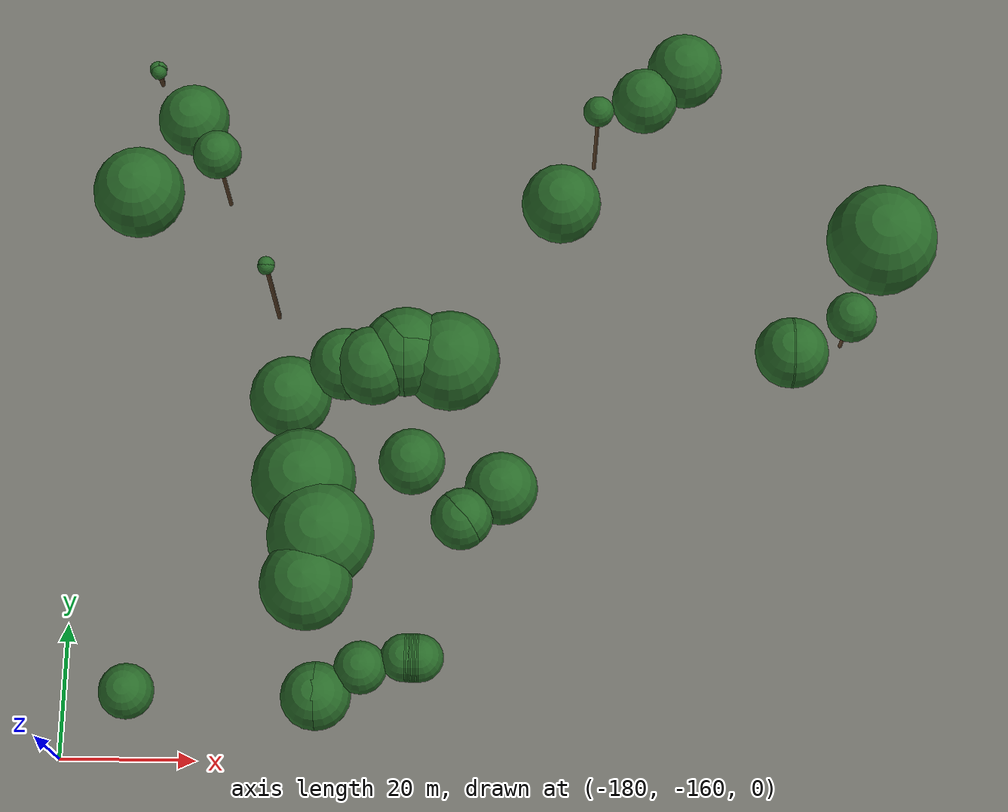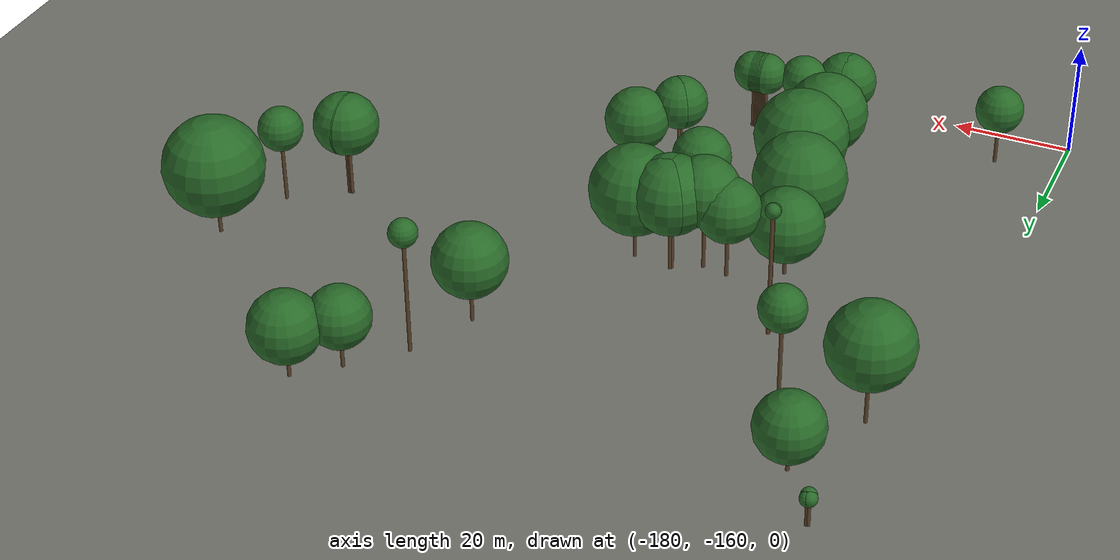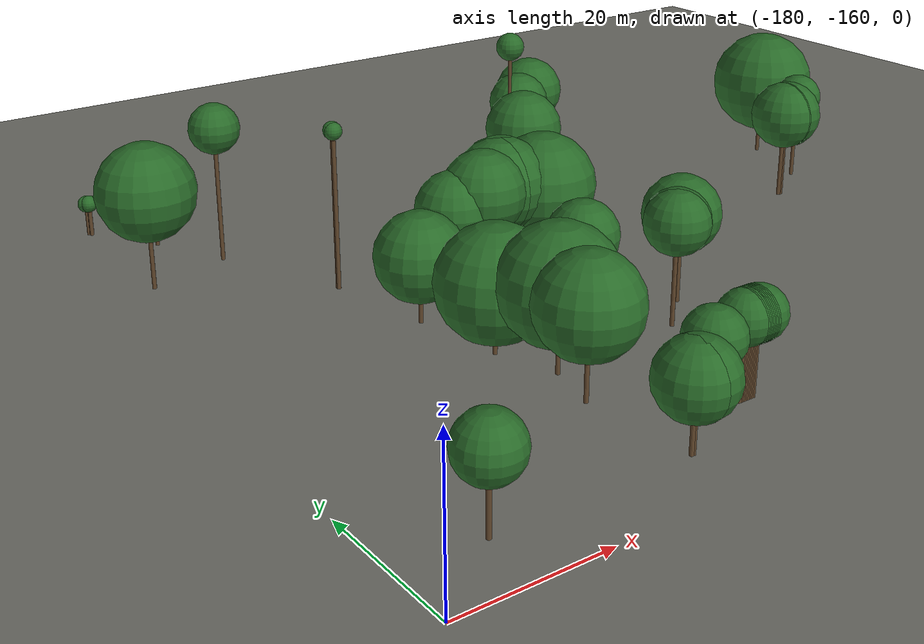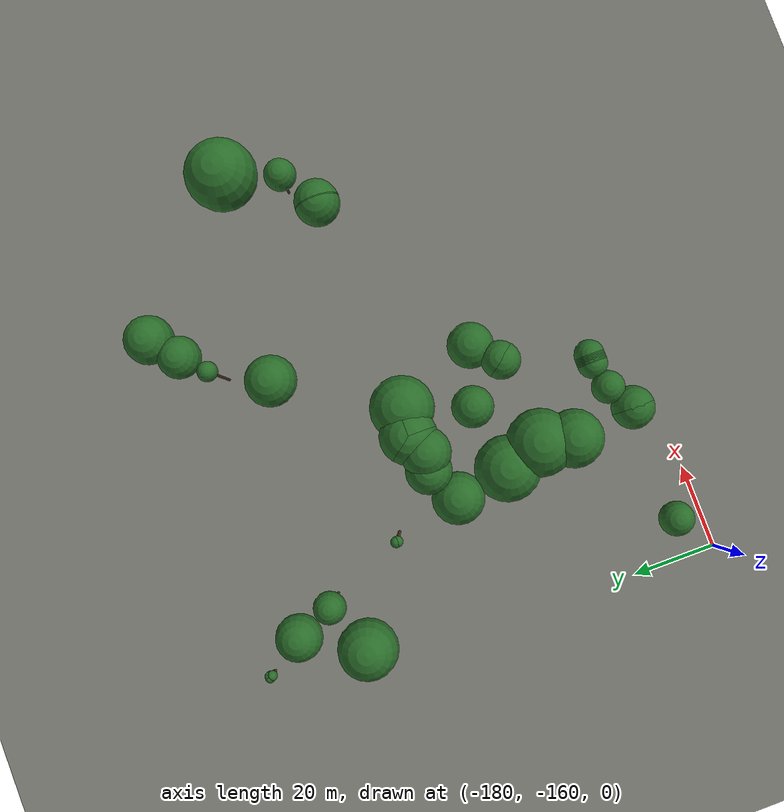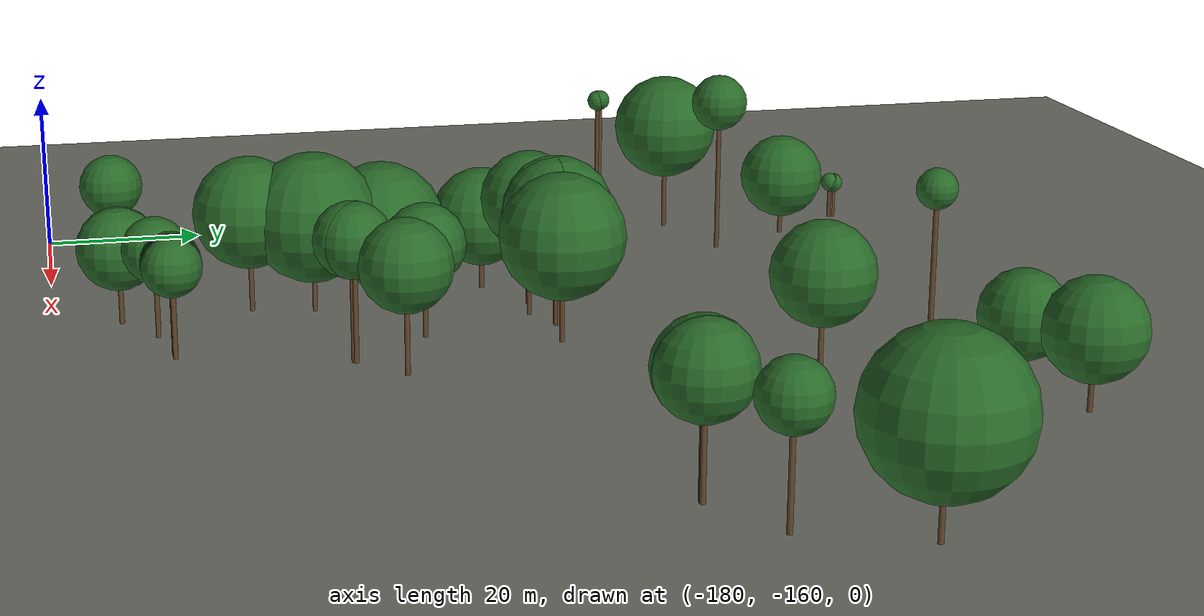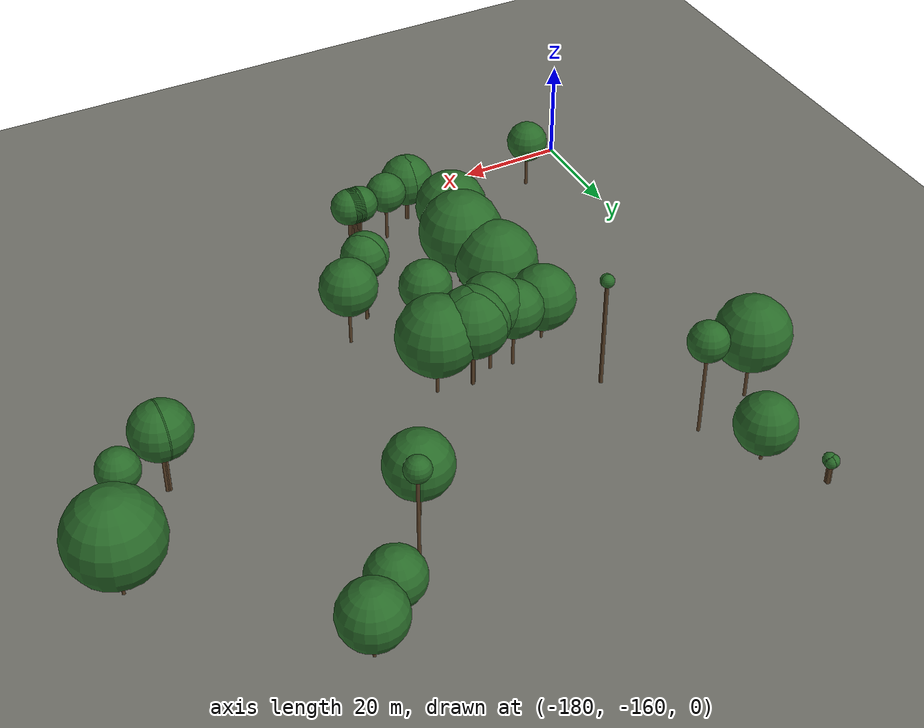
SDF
<sdf version="1.9">
 <world name="uav_arena_bk">
  <model name="ground_plane">
   <static>true</static>
   <link name="link">
    <collision name="collision">
     <geometry><plane><normal>0 0 1</normal><size>1200 1200</size></plane></geometry>
    </collision>
    <visual name="visual">
     <geometry><plane><normal>0 0 1</normal><size>1200 1200</size></plane></geometry>
     <material><ambient>0.35 0.35 0.33 1</ambient><diffuse>0.45 0.45 0.42 1</diffuse></material>
    </visual>
   </link>
  </model>
  <model name="tree_233">
   <static>true</static>
   <pose>-171.184 -51.440 0 0 0 0</pose>
   <link name="link">
    <collision name="trunk_collision">
     <pose>0 0 1.815 0 0 0</pose>
     <geometry><cylinder><radius>0.30</radius><length>3.630</length></cylinder></geometry>
    </collision>
    <visual name="trunk_visual">
     <pose>0 0 1.815 0 0 0</pose>
     <geometry><cylinder><radius>0.30</radius><length>3.630</length></cylinder></geometry>
     <material><ambient>0.25 0.18 0.11 1</ambient><diffuse>0.35 0.25 0.15 1</diffuse></material>
    </visual>
    <collision name="canopy_collision">
     <pose>0 0 4.880 0 0 0</pose>
     <geometry><sphere><radius>1.250</radius></sphere></geometry>
    </collision>
    <visual name="canopy_visual">
     <pose>0 0 4.880 0 0 0</pose>
     <geometry><sphere><radius>1.250</radius></sphere></geometry>
     <material><ambient>0.10 0.28 0.10 1</ambient><diffuse>0.16 0.42 0.16 1</diffuse></material>
     <plugin filename="gz-sim-label-system" name="gz::sim::systems::Label"><label>2</label></plugin>
    </visual>
   </link>
  </model>
  <model name="tree_234">
   <static>true</static>
   <pose>-170.934 -51.441 0 0 0 0</pose>
   <link name="link">
    <collision name="trunk_collision">
     <pose>0 0 1.795 0 0 0</pose>
     <geometry><cylinder><radius>0.30</radius><length>3.590</length></cylinder></geometry>
    </collision>
    <visual name="trunk_visual">
     <pose>0 0 1.795 0 0 0</pose>
     <geometry><cylinder><radius>0.30</radius><length>3.590</length></cylinder></geometry>
     <material><ambient>0.25 0.18 0.11 1</ambient><diffuse>0.35 0.25 0.15 1</diffuse></material>
    </visual>
    <collision name="canopy_collision">
     <pose>0 0 4.840 0 0 0</pose>
     <geometry><sphere><radius>1.250</radius></sphere></geometry>
    </collision>
    <visual name="canopy_visual">
     <pose>0 0 4.840 0 0 0</pose>
     <geometry><sphere><radius>1.250</radius></sphere></geometry>
     <material><ambient>0.10 0.28 0.10 1</ambient><diffuse>0.16 0.42 0.16 1</diffuse></material>
     <plugin filename="gz-sim-label-system" name="gz::sim::systems::Label"><label>2</label></plugin>
    </visual>
   </link>
  </model>
  <model name="tree_235">
   <static>true</static>
   <pose>-170.936 -51.691 0 0 0 0</pose>
   <link name="link">
    <collision name="trunk_collision">
     <pose>0 0 1.825 0 0 0</pose>
     <geometry><cylinder><radius>0.30</radius><length>3.650</length></cylinder></geometry>
    </collision>
    <visual name="trunk_visual">
     <pose>0 0 1.825 0 0 0</pose>
     <geometry><cylinder><radius>0.30</radius><length>3.650</length></cylinder></geometry>
     <material><ambient>0.25 0.18 0.11 1</ambient><diffuse>0.35 0.25 0.15 1</diffuse></material>
    </visual>
    <collision name="canopy_collision">
     <pose>0 0 4.900 0 0 0</pose>
     <geometry><sphere><radius>1.250</radius></sphere></geometry>
    </collision>
    <visual name="canopy_visual">
     <pose>0 0 4.900 0 0 0</pose>
     <geometry><sphere><radius>1.250</radius></sphere></geometry>
     <material><ambient>0.10 0.28 0.10 1</ambient><diffuse>0.16 0.42 0.16 1</diffuse></material>
     <plugin filename="gz-sim-label-system" name="gz::sim::systems::Label"><label>2</label></plugin>
    </visual>
   </link>
  </model>
  <model name="tree_236">
   <static>true</static>
   <pose>-170.937 -51.941 0 0 0 0</pose>
   <link name="link">
    <collision name="trunk_collision">
     <pose>0 0 1.875 0 0 0</pose>
     <geometry><cylinder><radius>0.30</radius><length>3.750</length></cylinder></geometry>
    </collision>
    <visual name="trunk_visual">
     <pose>0 0 1.875 0 0 0</pose>
     <geometry><cylinder><radius>0.30</radius><length>3.750</length></cylinder></geometry>
     <material><ambient>0.25 0.18 0.11 1</ambient><diffuse>0.35 0.25 0.15 1</diffuse></material>
    </visual>
    <collision name="canopy_collision">
     <pose>0 0 5.000 0 0 0</pose>
     <geometry><sphere><radius>1.250</radius></sphere></geometry>
    </collision>
    <visual name="canopy_visual">
     <pose>0 0 5.000 0 0 0</pose>
     <geometry><sphere><radius>1.250</radius></sphere></geometry>
     <material><ambient>0.10 0.28 0.10 1</ambient><diffuse>0.16 0.42 0.16 1</diffuse></material>
     <plugin filename="gz-sim-label-system" name="gz::sim::systems::Label"><label>2</label></plugin>
    </visual>
   </link>
  </model>
  <model name="tree_237">
   <static>true</static>
   <pose>-88.190 -52.639 0 0 0 0</pose>
   <link name="link">
    <collision name="trunk_collision">
     <pose>0 0 1.700 0 0 0</pose>
     <geometry><cylinder><radius>0.30</radius><length>3.400</length></cylinder></geometry>
    </collision>
    <visual name="trunk_visual">
     <pose>0 0 1.700 0 0 0</pose>
     <geometry><cylinder><radius>0.30</radius><length>3.400</length></cylinder></geometry>
     <material><ambient>0.25 0.18 0.11 1</ambient><diffuse>0.35 0.25 0.15 1</diffuse></material>
    </visual>
    <collision name="canopy_collision">
     <pose>0 0 9.210 0 0 0</pose>
     <geometry><sphere><radius>5.810</radius></sphere></geometry>
    </collision>
    <visual name="canopy_visual">
     <pose>0 0 9.210 0 0 0</pose>
     <geometry><sphere><radius>5.810</radius></sphere></geometry>
     <material><ambient>0.10 0.28 0.10 1</ambient><diffuse>0.16 0.42 0.16 1</diffuse></material>
     <plugin filename="gz-sim-label-system" name="gz::sim::systems::Label"><label>2</label></plugin>
    </visual>
   </link>
  </model>
  <model name="tree_240">
   <static>true</static>
   <pose>-94.469 -57.855 0 0 0 0</pose>
   <link name="link">
    <collision name="trunk_collision">
     <pose>0 0 2.120 0 0 0</pose>
     <geometry><cylinder><radius>0.30</radius><length>4.240</length></cylinder></geometry>
    </collision>
    <visual name="trunk_visual">
     <pose>0 0 2.120 0 0 0</pose>
     <geometry><cylinder><radius>0.30</radius><length>4.240</length></cylinder></geometry>
     <material><ambient>0.25 0.18 0.11 1</ambient><diffuse>0.35 0.25 0.15 1</diffuse></material>
    </visual>
    <collision name="canopy_collision">
     <pose>0 0 9.300 0 0 0</pose>
     <geometry><sphere><radius>5.060</radius></sphere></geometry>
    </collision>
    <visual name="canopy_visual">
     <pose>0 0 9.300 0 0 0</pose>
     <geometry><sphere><radius>5.060</radius></sphere></geometry>
     <material><ambient>0.10 0.28 0.10 1</ambient><diffuse>0.16 0.42 0.16 1</diffuse></material>
     <plugin filename="gz-sim-label-system" name="gz::sim::systems::Label"><label>2</label></plugin>
    </visual>
   </link>
  </model>
  <model name="tree_243">
   <static>true</static>
   <pose>-164.489 -61.476 0 0 0 0</pose>
   <link name="link">
    <collision name="trunk_collision">
     <pose>0 0 1.240 0 0 0</pose>
     <geometry><cylinder><radius>0.30</radius><length>2.480</length></cylinder></geometry>
    </collision>
    <visual name="trunk_visual">
     <pose>0 0 1.240 0 0 0</pose>
     <geometry><cylinder><radius>0.30</radius><length>2.480</length></cylinder></geometry>
     <material><ambient>0.25 0.18 0.11 1</ambient><diffuse>0.35 0.25 0.15 1</diffuse></material>
    </visual>
    <collision name="canopy_collision">
     <pose>0 0 7.990 0 0 0</pose>
     <geometry><sphere><radius>5.510</radius></sphere></geometry>
    </collision>
    <visual name="canopy_visual">
     <pose>0 0 7.990 0 0 0</pose>
     <geometry><sphere><radius>5.510</radius></sphere></geometry>
     <material><ambient>0.10 0.28 0.10 1</ambient><diffuse>0.16 0.42 0.16 1</diffuse></material>
     <plugin filename="gz-sim-label-system" name="gz::sim::systems::Label"><label>2</label></plugin>
    </visual>
   </link>
  </model>
  <model name="tree_250">
   <static>true</static>
   <pose>-102.009 -65.315 0 0 0 0</pose>
   <link name="link">
    <collision name="trunk_collision">
     <pose>0 0 9.730 0 0 0</pose>
     <geometry><cylinder><radius>0.30</radius><length>19.460</length></cylinder></geometry>
    </collision>
    <visual name="trunk_visual">
     <pose>0 0 9.730 0 0 0</pose>
     <geometry><cylinder><radius>0.30</radius><length>19.460</length></cylinder></geometry>
     <material><ambient>0.25 0.18 0.11 1</ambient><diffuse>0.35 0.25 0.15 1</diffuse></material>
    </visual>
    <collision name="canopy_collision">
     <pose>0 0 21.760 0 0 0</pose>
     <geometry><sphere><radius>2.300</radius></sphere></geometry>
    </collision>
    <visual name="canopy_visual">
     <pose>0 0 21.760 0 0 0</pose>
     <geometry><sphere><radius>2.300</radius></sphere></geometry>
     <material><ambient>0.10 0.28 0.10 1</ambient><diffuse>0.16 0.42 0.16 1</diffuse></material>
     <plugin filename="gz-sim-label-system" name="gz::sim::systems::Label"><label>2</label></plugin>
    </visual>
   </link>
  </model>
  <model name="tree_259">
   <static>true</static>
   <pose>-159.047 -72.256 0 0 0 0</pose>
   <link name="link">
    <collision name="trunk_collision">
     <pose>0 0 8.095 0 0 0</pose>
     <geometry><cylinder><radius>0.30</radius><length>16.190</length></cylinder></geometry>
    </collision>
    <visual name="trunk_visual">
     <pose>0 0 8.095 0 0 0</pose>
     <geometry><cylinder><radius>0.30</radius><length>16.190</length></cylinder></geometry>
     <material><ambient>0.25 0.18 0.11 1</ambient><diffuse>0.35 0.25 0.15 1</diffuse></material>
    </visual>
    <collision name="canopy_collision">
     <pose>0 0 19.830 0 0 0</pose>
     <geometry><sphere><radius>3.640</radius></sphere></geometry>
    </collision>
    <visual name="canopy_visual">
     <pose>0 0 19.830 0 0 0</pose>
     <geometry><sphere><radius>3.640</radius></sphere></geometry>
     <material><ambient>0.10 0.28 0.10 1</ambient><diffuse>0.16 0.42 0.16 1</diffuse></material>
     <plugin filename="gz-sim-label-system" name="gz::sim::systems::Label"><label>2</label></plugin>
    </visual>
   </link>
  </model>
  <model name="tree_265">
   <static>true</static>
   <pose>-107.317 -76.036 0 0 0 0</pose>
   <link name="link">
    <collision name="trunk_collision">
     <pose>0 0 2.660 0 0 0</pose>
     <geometry><cylinder><radius>0.30</radius><length>5.320</length></cylinder></geometry>
    </collision>
    <visual name="trunk_visual">
     <pose>0 0 2.660 0 0 0</pose>
     <geometry><cylinder><radius>0.30</radius><length>5.320</length></cylinder></geometry>
     <material><ambient>0.25 0.18 0.11 1</ambient><diffuse>0.35 0.25 0.15 1</diffuse></material>
    </visual>
    <collision name="canopy_collision">
     <pose>0 0 11.370 0 0 0</pose>
     <geometry><sphere><radius>6.050</radius></sphere></geometry>
    </collision>
    <visual name="canopy_visual">
     <pose>0 0 11.370 0 0 0</pose>
     <geometry><sphere><radius>6.050</radius></sphere></geometry>
     <material><ambient>0.10 0.28 0.10 1</ambient><diffuse>0.16 0.42 0.16 1</diffuse></material>
     <plugin filename="gz-sim-label-system" name="gz::sim::systems::Label"><label>2</label></plugin>
    </visual>
   </link>
  </model>
  <model name="tree_266">
   <static>true</static>
   <pose>-171.318 -76.190 0 0 0 0</pose>
   <link name="link">
    <collision name="trunk_collision">
     <pose>0 0 3.625 0 0 0</pose>
     <geometry><cylinder><radius>0.30</radius><length>7.250</length></cylinder></geometry>
    </collision>
    <visual name="trunk_visual">
     <pose>0 0 3.625 0 0 0</pose>
     <geometry><cylinder><radius>0.30</radius><length>7.250</length></cylinder></geometry>
     <material><ambient>0.25 0.18 0.11 1</ambient><diffuse>0.35 0.25 0.15 1</diffuse></material>
    </visual>
    <collision name="canopy_collision">
     <pose>0 0 14.150 0 0 0</pose>
     <geometry><sphere><radius>6.900</radius></sphere></geometry>
    </collision>
    <visual name="canopy_visual">
     <pose>0 0 14.150 0 0 0</pose>
     <geometry><sphere><radius>6.900</radius></sphere></geometry>
     <material><ambient>0.10 0.28 0.10 1</ambient><diffuse>0.16 0.42 0.16 1</diffuse></material>
     <plugin filename="gz-sim-label-system" name="gz::sim::systems::Label"><label>2</label></plugin>
    </visual>
   </link>
  </model>
  <model name="tree_269">
   <static>true</static>
   <pose>-58.848 -81.799 0 0 0 0</pose>
   <link name="link">
    <collision name="trunk_collision">
     <pose>0 0 2.140 0 0 0</pose>
     <geometry><cylinder><radius>0.30</radius><length>4.280</length></cylinder></geometry>
    </collision>
    <visual name="trunk_visual">
     <pose>0 0 2.140 0 0 0</pose>
     <geometry><cylinder><radius>0.30</radius><length>4.280</length></cylinder></geometry>
     <material><ambient>0.25 0.18 0.11 1</ambient><diffuse>0.35 0.25 0.15 1</diffuse></material>
    </visual>
    <collision name="canopy_collision">
     <pose>0 0 12.670 0 0 0</pose>
     <geometry><sphere><radius>8.390</radius></sphere></geometry>
    </collision>
    <visual name="canopy_visual">
     <pose>0 0 12.670 0 0 0</pose>
     <geometry><sphere><radius>8.390</radius></sphere></geometry>
     <material><ambient>0.10 0.28 0.10 1</ambient><diffuse>0.16 0.42 0.16 1</diffuse></material>
     <plugin filename="gz-sim-label-system" name="gz::sim::systems::Label"><label>2</label></plugin>
    </visual>
   </link>
  </model>
  <model name="tree_274">
   <static>true</static>
   <pose>-150.647 -90.802 0 0 0 0</pose>
   <link name="link">
    <collision name="trunk_collision">
     <pose>0 0 10.740 0 0 0</pose>
     <geometry><cylinder><radius>0.30</radius><length>21.480</length></cylinder></geometry>
    </collision>
    <visual name="trunk_visual">
     <pose>0 0 10.740 0 0 0</pose>
     <geometry><cylinder><radius>0.30</radius><length>21.480</length></cylinder></geometry>
     <material><ambient>0.25 0.18 0.11 1</ambient><diffuse>0.35 0.25 0.15 1</diffuse></material>
    </visual>
    <collision name="canopy_collision">
     <pose>0 0 22.730 0 0 0</pose>
     <geometry><sphere><radius>1.250</radius></sphere></geometry>
    </collision>
    <visual name="canopy_visual">
     <pose>0 0 22.730 0 0 0</pose>
     <geometry><sphere><radius>1.250</radius></sphere></geometry>
     <material><ambient>0.10 0.28 0.10 1</ambient><diffuse>0.16 0.42 0.16 1</diffuse></material>
     <plugin filename="gz-sim-label-system" name="gz::sim::systems::Label"><label>2</label></plugin>
    </visual>
   </link>
  </model>
  <model name="tree_275">
   <static>true</static>
   <pose>-150.649 -91.052 0 0 0 0</pose>
   <link name="link">
    <collision name="trunk_collision">
     <pose>0 0 10.715 0 0 0</pose>
     <geometry><cylinder><radius>0.30</radius><length>21.430</length></cylinder></geometry>
    </collision>
    <visual name="trunk_visual">
     <pose>0 0 10.715 0 0 0</pose>
     <geometry><cylinder><radius>0.30</radius><length>21.430</length></cylinder></geometry>
     <material><ambient>0.25 0.18 0.11 1</ambient><diffuse>0.35 0.25 0.15 1</diffuse></material>
    </visual>
    <collision name="canopy_collision">
     <pose>0 0 22.680 0 0 0</pose>
     <geometry><sphere><radius>1.250</radius></sphere></geometry>
    </collision>
    <visual name="canopy_visual">
     <pose>0 0 22.680 0 0 0</pose>
     <geometry><sphere><radius>1.250</radius></sphere></geometry>
     <material><ambient>0.10 0.28 0.10 1</ambient><diffuse>0.16 0.42 0.16 1</diffuse></material>
     <plugin filename="gz-sim-label-system" name="gz::sim::systems::Label"><label>2</label></plugin>
    </visual>
   </link>
  </model>
  <model name="tree_276">
   <static>true</static>
   <pose>-63.917 -94.521 0 0 0 0</pose>
   <link name="link">
    <collision name="trunk_collision">
     <pose>0 0 4.905 0 0 0</pose>
     <geometry><cylinder><radius>0.30</radius><length>9.810</length></cylinder></geometry>
    </collision>
    <visual name="trunk_visual">
     <pose>0 0 4.905 0 0 0</pose>
     <geometry><cylinder><radius>0.30</radius><length>9.810</length></cylinder></geometry>
     <material><ambient>0.25 0.18 0.11 1</ambient><diffuse>0.35 0.25 0.15 1</diffuse></material>
    </visual>
    <collision name="canopy_collision">
     <pose>0 0 13.560 0 0 0</pose>
     <geometry><sphere><radius>3.750</radius></sphere></geometry>
    </collision>
    <visual name="canopy_visual">
     <pose>0 0 13.560 0 0 0</pose>
     <geometry><sphere><radius>3.750</radius></sphere></geometry>
     <material><ambient>0.10 0.28 0.10 1</ambient><diffuse>0.16 0.42 0.16 1</diffuse></material>
     <plugin filename="gz-sim-label-system" name="gz::sim::systems::Label"><label>2</label></plugin>
    </visual>
   </link>
  </model>
  <model name="tree_280">
   <static>true</static>
   <pose>-73.198 -100.221 0 0 0 0</pose>
   <link name="link">
    <collision name="trunk_collision">
     <pose>0 0 4.130 0 0 0</pose>
     <geometry><cylinder><radius>0.30</radius><length>8.260</length></cylinder></geometry>
    </collision>
    <visual name="trunk_visual">
     <pose>0 0 4.130 0 0 0</pose>
     <geometry><cylinder><radius>0.30</radius><length>8.260</length></cylinder></geometry>
     <material><ambient>0.25 0.18 0.11 1</ambient><diffuse>0.35 0.25 0.15 1</diffuse></material>
    </visual>
    <collision name="canopy_collision">
     <pose>0 0 13.510 0 0 0</pose>
     <geometry><sphere><radius>5.250</radius></sphere></geometry>
    </collision>
    <visual name="canopy_visual">
     <pose>0 0 13.510 0 0 0</pose>
     <geometry><sphere><radius>5.250</radius></sphere></geometry>
     <material><ambient>0.10 0.28 0.10 1</ambient><diffuse>0.16 0.42 0.16 1</diffuse></material>
     <plugin filename="gz-sim-label-system" name="gz::sim::systems::Label"><label>2</label></plugin>
    </visual>
   </link>
  </model>
  <model name="tree_281">
   <static>true</static>
   <pose>-72.948 -100.222 0 0 0 0</pose>
   <link name="link">
    <collision name="trunk_collision">
     <pose>0 0 4.130 0 0 0</pose>
     <geometry><cylinder><radius>0.30</radius><length>8.260</length></cylinder></geometry>
    </collision>
    <visual name="trunk_visual">
     <pose>0 0 4.130 0 0 0</pose>
     <geometry><cylinder><radius>0.30</radius><length>8.260</length></cylinder></geometry>
     <material><ambient>0.25 0.18 0.11 1</ambient><diffuse>0.35 0.25 0.15 1</diffuse></material>
    </visual>
    <collision name="canopy_collision">
     <pose>0 0 13.510 0 0 0</pose>
     <geometry><sphere><radius>5.250</radius></sphere></geometry>
    </collision>
    <visual name="canopy_visual">
     <pose>0 0 13.510 0 0 0</pose>
     <geometry><sphere><radius>5.250</radius></sphere></geometry>
     <material><ambient>0.10 0.28 0.10 1</ambient><diffuse>0.16 0.42 0.16 1</diffuse></material>
     <plugin filename="gz-sim-label-system" name="gz::sim::systems::Label"><label>2</label></plugin>
    </visual>
   </link>
  </model>
  <model name="tree_282">
   <static>true</static>
   <pose>-72.698 -100.224 0 0 0 0</pose>
   <link name="link">
    <collision name="trunk_collision">
     <pose>0 0 4.130 0 0 0</pose>
     <geometry><cylinder><radius>0.30</radius><length>8.260</length></cylinder></geometry>
    </collision>
    <visual name="trunk_visual">
     <pose>0 0 4.130 0 0 0</pose>
     <geometry><cylinder><radius>0.30</radius><length>8.260</length></cylinder></geometry>
     <material><ambient>0.25 0.18 0.11 1</ambient><diffuse>0.35 0.25 0.15 1</diffuse></material>
    </visual>
    <collision name="canopy_collision">
     <pose>0 0 13.510 0 0 0</pose>
     <geometry><sphere><radius>5.250</radius></sphere></geometry>
    </collision>
    <visual name="canopy_visual">
     <pose>0 0 13.510 0 0 0</pose>
     <geometry><sphere><radius>5.250</radius></sphere></geometry>
     <material><ambient>0.10 0.28 0.10 1</ambient><diffuse>0.16 0.42 0.16 1</diffuse></material>
     <plugin filename="gz-sim-label-system" name="gz::sim::systems::Label"><label>2</label></plugin>
    </visual>
   </link>
  </model>
  <model name="tree_287">
   <static>true</static>
   <pose>-130.202 -100.912 0 0 0 0</pose>
   <link name="link">
    <collision name="trunk_collision">
     <pose>0 0 3.770 0 0 0</pose>
     <geometry><cylinder><radius>0.30</radius><length>7.540</length></cylinder></geometry>
    </collision>
    <visual name="trunk_visual">
     <pose>0 0 3.770 0 0 0</pose>
     <geometry><cylinder><radius>0.30</radius><length>7.540</length></cylinder></geometry>
     <material><ambient>0.25 0.18 0.11 1</ambient><diffuse>0.35 0.25 0.15 1</diffuse></material>
    </visual>
    <collision name="canopy_collision">
     <pose>0 0 14.080 0 0 0</pose>
     <geometry><sphere><radius>6.540</radius></sphere></geometry>
    </collision>
    <visual name="canopy_visual">
     <pose>0 0 14.080 0 0 0</pose>
     <geometry><sphere><radius>6.540</radius></sphere></geometry>
     <material><ambient>0.10 0.28 0.10 1</ambient><diffuse>0.16 0.42 0.16 1</diffuse></material>
     <plugin filename="gz-sim-label-system" name="gz::sim::systems::Label"><label>2</label></plugin>
    </visual>
   </link>
  </model>
  <model name="tree_288">
   <static>true</static>
   <pose>-130.453 -101.161 0 0 0 0</pose>
   <link name="link">
    <collision name="trunk_collision">
     <pose>0 0 3.770 0 0 0</pose>
     <geometry><cylinder><radius>0.30</radius><length>7.540</length></cylinder></geometry>
    </collision>
    <visual name="trunk_visual">
     <pose>0 0 3.770 0 0 0</pose>
     <geometry><cylinder><radius>0.30</radius><length>7.540</length></cylinder></geometry>
     <material><ambient>0.25 0.18 0.11 1</ambient><diffuse>0.35 0.25 0.15 1</diffuse></material>
    </visual>
    <collision name="canopy_collision">
     <pose>0 0 14.080 0 0 0</pose>
     <geometry><sphere><radius>6.540</radius></sphere></geometry>
    </collision>
    <visual name="canopy_visual">
     <pose>0 0 14.080 0 0 0</pose>
     <geometry><sphere><radius>6.540</radius></sphere></geometry>
     <material><ambient>0.10 0.28 0.10 1</ambient><diffuse>0.16 0.42 0.16 1</diffuse></material>
     <plugin filename="gz-sim-label-system" name="gz::sim::systems::Label"><label>2</label></plugin>
    </visual>
   </link>
  </model>
  <model name="tree_289">
   <static>true</static>
   <pose>-130.203 -101.162 0 0 0 0</pose>
   <link name="link">
    <collision name="trunk_collision">
     <pose>0 0 3.770 0 0 0</pose>
     <geometry><cylinder><radius>0.30</radius><length>7.540</length></cylinder></geometry>
    </collision>
    <visual name="trunk_visual">
     <pose>0 0 3.770 0 0 0</pose>
     <geometry><cylinder><radius>0.30</radius><length>7.540</length></cylinder></geometry>
     <material><ambient>0.25 0.18 0.11 1</ambient><diffuse>0.35 0.25 0.15 1</diffuse></material>
    </visual>
    <collision name="canopy_collision">
     <pose>0 0 14.080 0 0 0</pose>
     <geometry><sphere><radius>6.540</radius></sphere></geometry>
    </collision>
    <visual name="canopy_visual">
     <pose>0 0 14.080 0 0 0</pose>
     <geometry><sphere><radius>6.540</radius></sphere></geometry>
     <material><ambient>0.10 0.28 0.10 1</ambient><diffuse>0.16 0.42 0.16 1</diffuse></material>
     <plugin filename="gz-sim-label-system" name="gz::sim::systems::Label"><label>2</label></plugin>
    </visual>
   </link>
  </model>
  <model name="tree_291">
   <static>true</static>
   <pose>-123.707 -101.947 0 0 0 0</pose>
   <link name="link">
    <collision name="trunk_collision">
     <pose>0 0 2.655 0 0 0</pose>
     <geometry><cylinder><radius>0.30</radius><length>5.310</length></cylinder></geometry>
    </collision>
    <visual name="trunk_visual">
     <pose>0 0 2.655 0 0 0</pose>
     <geometry><cylinder><radius>0.30</radius><length>5.310</length></cylinder></geometry>
     <material><ambient>0.25 0.18 0.11 1</ambient><diffuse>0.35 0.25 0.15 1</diffuse></material>
    </visual>
    <collision name="canopy_collision">
     <pose>0 0 12.770 0 0 0</pose>
     <geometry><sphere><radius>7.460</radius></sphere></geometry>
    </collision>
    <visual name="canopy_visual">
     <pose>0 0 12.770 0 0 0</pose>
     <geometry><sphere><radius>7.460</radius></sphere></geometry>
     <material><ambient>0.10 0.28 0.10 1</ambient><diffuse>0.16 0.42 0.16 1</diffuse></material>
     <plugin filename="gz-sim-label-system" name="gz::sim::systems::Label"><label>2</label></plugin>
    </visual>
   </link>
  </model>
  <model name="tree_292">
   <static>true</static>
   <pose>-139.211 -102.614 0 0 0 0</pose>
   <link name="link">
    <collision name="trunk_collision">
     <pose>0 0 3.600 0 0 0</pose>
     <geometry><cylinder><radius>0.30</radius><length>7.200</length></cylinder></geometry>
    </collision>
    <visual name="trunk_visual">
     <pose>0 0 3.600 0 0 0</pose>
     <geometry><cylinder><radius>0.30</radius><length>7.200</length></cylinder></geometry>
     <material><ambient>0.25 0.18 0.11 1</ambient><diffuse>0.35 0.25 0.15 1</diffuse></material>
    </visual>
    <collision name="canopy_collision">
     <pose>0 0 12.590 0 0 0</pose>
     <geometry><sphere><radius>5.390</radius></sphere></geometry>
    </collision>
    <visual name="canopy_visual">
     <pose>0 0 12.590 0 0 0</pose>
     <geometry><sphere><radius>5.390</radius></sphere></geometry>
     <material><ambient>0.10 0.28 0.10 1</ambient><diffuse>0.16 0.42 0.16 1</diffuse></material>
     <plugin filename="gz-sim-label-system" name="gz::sim::systems::Label"><label>2</label></plugin>
    </visual>
   </link>
  </model>
  <model name="tree_294">
   <static>true</static>
   <pose>-134.965 -103.387 0 0 0 0</pose>
   <link name="link">
    <collision name="trunk_collision">
     <pose>0 0 4.295 0 0 0</pose>
     <geometry><cylinder><radius>0.30</radius><length>8.590</length></cylinder></geometry>
    </collision>
    <visual name="trunk_visual">
     <pose>0 0 4.295 0 0 0</pose>
     <geometry><cylinder><radius>0.30</radius><length>8.590</length></cylinder></geometry>
     <material><ambient>0.25 0.18 0.11 1</ambient><diffuse>0.35 0.25 0.15 1</diffuse></material>
    </visual>
    <collision name="canopy_collision">
     <pose>0 0 14.450 0 0 0</pose>
     <geometry><sphere><radius>5.860</radius></sphere></geometry>
    </collision>
    <visual name="canopy_visual">
     <pose>0 0 14.450 0 0 0</pose>
     <geometry><sphere><radius>5.860</radius></sphere></geometry>
     <material><ambient>0.10 0.28 0.10 1</ambient><diffuse>0.16 0.42 0.16 1</diffuse></material>
     <plugin filename="gz-sim-label-system" name="gz::sim::systems::Label"><label>2</label></plugin>
    </visual>
   </link>
  </model>
  <model name="tree_299">
   <static>true</static>
   <pose>-147.484 -106.819 0 0 0 0</pose>
   <link name="link">
    <collision name="trunk_collision">
     <pose>0 0 1.570 0 0 0</pose>
     <geometry><cylinder><radius>0.30</radius><length>3.140</length></cylinder></geometry>
    </collision>
    <visual name="trunk_visual">
     <pose>0 0 1.570 0 0 0</pose>
     <geometry><cylinder><radius>0.30</radius><length>3.140</length></cylinder></geometry>
     <material><ambient>0.25 0.18 0.11 1</ambient><diffuse>0.35 0.25 0.15 1</diffuse></material>
    </visual>
    <collision name="canopy_collision">
     <pose>0 0 9.290 0 0 0</pose>
     <geometry><sphere><radius>6.150</radius></sphere></geometry>
    </collision>
    <visual name="canopy_visual">
     <pose>0 0 9.290 0 0 0</pose>
     <geometry><sphere><radius>6.150</radius></sphere></geometry>
     <material><ambient>0.10 0.28 0.10 1</ambient><diffuse>0.16 0.42 0.16 1</diffuse></material>
     <plugin filename="gz-sim-label-system" name="gz::sim::systems::Label"><label>2</label></plugin>
    </visual>
   </link>
  </model>
  <model name="tree_305">
   <static>true</static>
   <pose>-129.040 -117.169 0 0 0 0</pose>
   <link name="link">
    <collision name="trunk_collision">
     <pose>0 0 3.185 0 0 0</pose>
     <geometry><cylinder><radius>0.30</radius><length>6.370</length></cylinder></geometry>
    </collision>
    <visual name="trunk_visual">
     <pose>0 0 3.185 0 0 0</pose>
     <geometry><cylinder><radius>0.30</radius><length>6.370</length></cylinder></geometry>
     <material><ambient>0.25 0.18 0.11 1</ambient><diffuse>0.35 0.25 0.15 1</diffuse></material>
    </visual>
    <collision name="canopy_collision">
     <pose>0 0 11.280 0 0 0</pose>
     <geometry><sphere><radius>4.910</radius></sphere></geometry>
    </collision>
    <visual name="canopy_visual">
     <pose>0 0 11.280 0 0 0</pose>
     <geometry><sphere><radius>4.910</radius></sphere></geometry>
     <material><ambient>0.10 0.28 0.10 1</ambient><diffuse>0.16 0.42 0.16 1</diffuse></material>
     <plugin filename="gz-sim-label-system" name="gz::sim::systems::Label"><label>2</label></plugin>
    </visual>
   </link>
  </model>
  <model name="tree_306">
   <static>true</static>
   <pose>-145.054 -119.832 0 0 0 0</pose>
   <link name="link">
    <collision name="trunk_collision">
     <pose>0 0 0.915 0 0 0</pose>
     <geometry><cylinder><radius>0.30</radius><length>1.830</length></cylinder></geometry>
    </collision>
    <visual name="trunk_visual">
     <pose>0 0 0.915 0 0 0</pose>
     <geometry><cylinder><radius>0.30</radius><length>1.830</length></cylinder></geometry>
     <material><ambient>0.25 0.18 0.11 1</ambient><diffuse>0.35 0.25 0.15 1</diffuse></material>
    </visual>
    <collision name="canopy_collision">
     <pose>0 0 9.620 0 0 0</pose>
     <geometry><sphere><radius>7.790</radius></sphere></geometry>
    </collision>
    <visual name="canopy_visual">
     <pose>0 0 9.620 0 0 0</pose>
     <geometry><sphere><radius>7.790</radius></sphere></geometry>
     <material><ambient>0.10 0.28 0.10 1</ambient><diffuse>0.16 0.42 0.16 1</diffuse></material>
     <plugin filename="gz-sim-label-system" name="gz::sim::systems::Label"><label>2</label></plugin>
    </visual>
   </link>
  </model>
  <model name="tree_308">
   <static>true</static>
   <pose>-115.813 -121.490 0 0 0 0</pose>
   <link name="link">
    <collision name="trunk_collision">
     <pose>0 0 3.680 0 0 0</pose>
     <geometry><cylinder><radius>0.30</radius><length>7.360</length></cylinder></geometry>
    </collision>
    <visual name="trunk_visual">
     <pose>0 0 3.680 0 0 0</pose>
     <geometry><cylinder><radius>0.30</radius><length>7.360</length></cylinder></geometry>
     <material><ambient>0.25 0.18 0.11 1</ambient><diffuse>0.35 0.25 0.15 1</diffuse></material>
    </visual>
    <collision name="canopy_collision">
     <pose>0 0 12.730 0 0 0</pose>
     <geometry><sphere><radius>5.370</radius></sphere></geometry>
    </collision>
    <visual name="canopy_visual">
     <pose>0 0 12.730 0 0 0</pose>
     <geometry><sphere><radius>5.370</radius></sphere></geometry>
     <material><ambient>0.10 0.28 0.10 1</ambient><diffuse>0.16 0.42 0.16 1</diffuse></material>
     <plugin filename="gz-sim-label-system" name="gz::sim::systems::Label"><label>2</label></plugin>
    </visual>
   </link>
  </model>
  <model name="tree_323">
   <static>true</static>
   <pose>-121.340 -126.460 0 0 0 0</pose>
   <link name="link">
    <collision name="trunk_collision">
     <pose>0 0 5.005 0 0 0</pose>
     <geometry><cylinder><radius>0.30</radius><length>10.010</length></cylinder></geometry>
    </collision>
    <visual name="trunk_visual">
     <pose>0 0 5.005 0 0 0</pose>
     <geometry><cylinder><radius>0.30</radius><length>10.010</length></cylinder></geometry>
     <material><ambient>0.25 0.18 0.11 1</ambient><diffuse>0.35 0.25 0.15 1</diffuse></material>
    </visual>
    <collision name="canopy_collision">
     <pose>0 0 14.430 0 0 0</pose>
     <geometry><sphere><radius>4.420</radius></sphere></geometry>
    </collision>
    <visual name="canopy_visual">
     <pose>0 0 14.430 0 0 0</pose>
     <geometry><sphere><radius>4.420</radius></sphere></geometry>
     <material><ambient>0.10 0.28 0.10 1</ambient><diffuse>0.16 0.42 0.16 1</diffuse></material>
     <plugin filename="gz-sim-label-system" name="gz::sim::systems::Label"><label>2</label></plugin>
    </visual>
   </link>
  </model>
  <model name="tree_324">
   <static>true</static>
   <pose>-121.591 -126.709 0 0 0 0</pose>
   <link name="link">
    <collision name="trunk_collision">
     <pose>0 0 5.005 0 0 0</pose>
     <geometry><cylinder><radius>0.30</radius><length>10.010</length></cylinder></geometry>
    </collision>
    <visual name="trunk_visual">
     <pose>0 0 5.005 0 0 0</pose>
     <geometry><cylinder><radius>0.30</radius><length>10.010</length></cylinder></geometry>
     <material><ambient>0.25 0.18 0.11 1</ambient><diffuse>0.35 0.25 0.15 1</diffuse></material>
    </visual>
    <collision name="canopy_collision">
     <pose>0 0 14.430 0 0 0</pose>
     <geometry><sphere><radius>4.420</radius></sphere></geometry>
    </collision>
    <visual name="canopy_visual">
     <pose>0 0 14.430 0 0 0</pose>
     <geometry><sphere><radius>4.420</radius></sphere></geometry>
     <material><ambient>0.10 0.28 0.10 1</ambient><diffuse>0.16 0.42 0.16 1</diffuse></material>
     <plugin filename="gz-sim-label-system" name="gz::sim::systems::Label"><label>2</label></plugin>
    </visual>
   </link>
  </model>
  <model name="tree_325">
   <static>true</static>
   <pose>-142.102 -128.598 0 0 0 0</pose>
   <link name="link">
    <collision name="trunk_collision">
     <pose>0 0 1.960 0 0 0</pose>
     <geometry><cylinder><radius>0.30</radius><length>3.920</length></cylinder></geometry>
    </collision>
    <visual name="trunk_visual">
     <pose>0 0 1.960 0 0 0</pose>
     <geometry><cylinder><radius>0.30</radius><length>3.920</length></cylinder></geometry>
     <material><ambient>0.25 0.18 0.11 1</ambient><diffuse>0.35 0.25 0.15 1</diffuse></material>
    </visual>
    <collision name="canopy_collision">
     <pose>0 0 11.830 0 0 0</pose>
     <geometry><sphere><radius>7.910</radius></sphere></geometry>
    </collision>
    <visual name="canopy_visual">
     <pose>0 0 11.830 0 0 0</pose>
     <geometry><sphere><radius>7.910</radius></sphere></geometry>
     <material><ambient>0.10 0.28 0.10 1</ambient><diffuse>0.16 0.42 0.16 1</diffuse></material>
     <plugin filename="gz-sim-label-system" name="gz::sim::systems::Label"><label>2</label></plugin>
    </visual>
   </link>
  </model>
  <model name="tree_329">
   <static>true</static>
   <pose>-143.892 -136.089 0 0 0 0</pose>
   <link name="link">
    <collision name="trunk_collision">
     <pose>0 0 2.805 0 0 0</pose>
     <geometry><cylinder><radius>0.30</radius><length>5.610</length></cylinder></geometry>
    </collision>
    <visual name="trunk_visual">
     <pose>0 0 2.805 0 0 0</pose>
     <geometry><cylinder><radius>0.30</radius><length>5.610</length></cylinder></geometry>
     <material><ambient>0.25 0.18 0.11 1</ambient><diffuse>0.35 0.25 0.15 1</diffuse></material>
    </visual>
    <collision name="canopy_collision">
     <pose>0 0 12.410 0 0 0</pose>
     <geometry><sphere><radius>6.800</radius></sphere></geometry>
    </collision>
    <visual name="canopy_visual">
     <pose>0 0 12.410 0 0 0</pose>
     <geometry><sphere><radius>6.800</radius></sphere></geometry>
     <material><ambient>0.10 0.28 0.10 1</ambient><diffuse>0.16 0.42 0.16 1</diffuse></material>
     <plugin filename="gz-sim-label-system" name="gz::sim::systems::Label"><label>2</label></plugin>
    </visual>
   </link>
  </model>
  <model name="tree_344">
   <static>true</static>
   <pose>-129.448 -146.417 0 0 0 0</pose>
   <link name="link">
    <collision name="trunk_collision">
     <pose>0 0 3.700 0 0 0</pose>
     <geometry><cylinder><radius>0.30</radius><length>7.400</length></cylinder></geometry>
    </collision>
    <visual name="trunk_visual">
     <pose>0 0 3.700 0 0 0</pose>
     <geometry><cylinder><radius>0.30</radius><length>7.400</length></cylinder></geometry>
     <material><ambient>0.25 0.18 0.11 1</ambient><diffuse>0.35 0.25 0.15 1</diffuse></material>
    </visual>
    <collision name="canopy_collision">
     <pose>0 0 10.900 0 0 0</pose>
     <geometry><sphere><radius>3.500</radius></sphere></geometry>
    </collision>
    <visual name="canopy_visual">
     <pose>0 0 10.900 0 0 0</pose>
     <geometry><sphere><radius>3.500</radius></sphere></geometry>
     <material><ambient>0.10 0.28 0.10 1</ambient><diffuse>0.16 0.42 0.16 1</diffuse></material>
     <plugin filename="gz-sim-label-system" name="gz::sim::systems::Label"><label>2</label></plugin>
    </visual>
   </link>
  </model>
  <model name="tree_345">
   <static>true</static>
   <pose>-129.198 -146.418 0 0 0 0</pose>
   <link name="link">
    <collision name="trunk_collision">
     <pose>0 0 3.700 0 0 0</pose>
     <geometry><cylinder><radius>0.30</radius><length>7.400</length></cylinder></geometry>
    </collision>
    <visual name="trunk_visual">
     <pose>0 0 3.700 0 0 0</pose>
     <geometry><cylinder><radius>0.30</radius><length>7.400</length></cylinder></geometry>
     <material><ambient>0.25 0.18 0.11 1</ambient><diffuse>0.35 0.25 0.15 1</diffuse></material>
    </visual>
    <collision name="canopy_collision">
     <pose>0 0 10.900 0 0 0</pose>
     <geometry><sphere><radius>3.500</radius></sphere></geometry>
    </collision>
    <visual name="canopy_visual">
     <pose>0 0 10.900 0 0 0</pose>
     <geometry><sphere><radius>3.500</radius></sphere></geometry>
     <material><ambient>0.10 0.28 0.10 1</ambient><diffuse>0.16 0.42 0.16 1</diffuse></material>
     <plugin filename="gz-sim-label-system" name="gz::sim::systems::Label"><label>2</label></plugin>
    </visual>
   </link>
  </model>
  <model name="tree_346">
   <static>true</static>
   <pose>-128.948 -146.419 0 0 0 0</pose>
   <link name="link">
    <collision name="trunk_collision">
     <pose>0 0 3.700 0 0 0</pose>
     <geometry><cylinder><radius>0.30</radius><length>7.400</length></cylinder></geometry>
    </collision>
    <visual name="trunk_visual">
     <pose>0 0 3.700 0 0 0</pose>
     <geometry><cylinder><radius>0.30</radius><length>7.400</length></cylinder></geometry>
     <material><ambient>0.25 0.18 0.11 1</ambient><diffuse>0.35 0.25 0.15 1</diffuse></material>
    </visual>
    <collision name="canopy_collision">
     <pose>0 0 10.900 0 0 0</pose>
     <geometry><sphere><radius>3.500</radius></sphere></geometry>
    </collision>
    <visual name="canopy_visual">
     <pose>0 0 10.900 0 0 0</pose>
     <geometry><sphere><radius>3.500</radius></sphere></geometry>
     <material><ambient>0.10 0.28 0.10 1</ambient><diffuse>0.16 0.42 0.16 1</diffuse></material>
     <plugin filename="gz-sim-label-system" name="gz::sim::systems::Label"><label>2</label></plugin>
    </visual>
   </link>
  </model>
  <model name="tree_347">
   <static>true</static>
   <pose>-128.698 -146.421 0 0 0 0</pose>
   <link name="link">
    <collision name="trunk_collision">
     <pose>0 0 3.695 0 0 0</pose>
     <geometry><cylinder><radius>0.30</radius><length>7.390</length></cylinder></geometry>
    </collision>
    <visual name="trunk_visual">
     <pose>0 0 3.695 0 0 0</pose>
     <geometry><cylinder><radius>0.30</radius><length>7.390</length></cylinder></geometry>
     <material><ambient>0.25 0.18 0.11 1</ambient><diffuse>0.35 0.25 0.15 1</diffuse></material>
    </visual>
    <collision name="canopy_collision">
     <pose>0 0 10.890 0 0 0</pose>
     <geometry><sphere><radius>3.500</radius></sphere></geometry>
    </collision>
    <visual name="canopy_visual">
     <pose>0 0 10.890 0 0 0</pose>
     <geometry><sphere><radius>3.500</radius></sphere></geometry>
     <material><ambient>0.10 0.28 0.10 1</ambient><diffuse>0.16 0.42 0.16 1</diffuse></material>
     <plugin filename="gz-sim-label-system" name="gz::sim::systems::Label"><label>2</label></plugin>
    </visual>
   </link>
  </model>
  <model name="tree_348">
   <static>true</static>
   <pose>-128.448 -146.422 0 0 0 0</pose>
   <link name="link">
    <collision name="trunk_collision">
     <pose>0 0 3.695 0 0 0</pose>
     <geometry><cylinder><radius>0.30</radius><length>7.390</length></cylinder></geometry>
    </collision>
    <visual name="trunk_visual">
     <pose>0 0 3.695 0 0 0</pose>
     <geometry><cylinder><radius>0.30</radius><length>7.390</length></cylinder></geometry>
     <material><ambient>0.25 0.18 0.11 1</ambient><diffuse>0.35 0.25 0.15 1</diffuse></material>
    </visual>
    <collision name="canopy_collision">
     <pose>0 0 10.890 0 0 0</pose>
     <geometry><sphere><radius>3.500</radius></sphere></geometry>
    </collision>
    <visual name="canopy_visual">
     <pose>0 0 10.890 0 0 0</pose>
     <geometry><sphere><radius>3.500</radius></sphere></geometry>
     <material><ambient>0.10 0.28 0.10 1</ambient><diffuse>0.16 0.42 0.16 1</diffuse></material>
     <plugin filename="gz-sim-label-system" name="gz::sim::systems::Label"><label>2</label></plugin>
    </visual>
   </link>
  </model>
  <model name="tree_349">
   <static>true</static>
   <pose>-128.198 -146.424 0 0 0 0</pose>
   <link name="link">
    <collision name="trunk_collision">
     <pose>0 0 3.695 0 0 0</pose>
     <geometry><cylinder><radius>0.30</radius><length>7.390</length></cylinder></geometry>
    </collision>
    <visual name="trunk_visual">
     <pose>0 0 3.695 0 0 0</pose>
     <geometry><cylinder><radius>0.30</radius><length>7.390</length></cylinder></geometry>
     <material><ambient>0.25 0.18 0.11 1</ambient><diffuse>0.35 0.25 0.15 1</diffuse></material>
    </visual>
    <collision name="canopy_collision">
     <pose>0 0 10.890 0 0 0</pose>
     <geometry><sphere><radius>3.500</radius></sphere></geometry>
    </collision>
    <visual name="canopy_visual">
     <pose>0 0 10.890 0 0 0</pose>
     <geometry><sphere><radius>3.500</radius></sphere></geometry>
     <material><ambient>0.10 0.28 0.10 1</ambient><diffuse>0.16 0.42 0.16 1</diffuse></material>
     <plugin filename="gz-sim-label-system" name="gz::sim::systems::Label"><label>2</label></plugin>
    </visual>
   </link>
  </model>
  <model name="tree_350">
   <static>true</static>
   <pose>-127.948 -146.425 0 0 0 0</pose>
   <link name="link">
    <collision name="trunk_collision">
     <pose>0 0 3.695 0 0 0</pose>
     <geometry><cylinder><radius>0.30</radius><length>7.390</length></cylinder></geometry>
    </collision>
    <visual name="trunk_visual">
     <pose>0 0 3.695 0 0 0</pose>
     <geometry><cylinder><radius>0.30</radius><length>7.390</length></cylinder></geometry>
     <material><ambient>0.25 0.18 0.11 1</ambient><diffuse>0.35 0.25 0.15 1</diffuse></material>
    </visual>
    <collision name="canopy_collision">
     <pose>0 0 10.890 0 0 0</pose>
     <geometry><sphere><radius>3.500</radius></sphere></geometry>
    </collision>
    <visual name="canopy_visual">
     <pose>0 0 10.890 0 0 0</pose>
     <geometry><sphere><radius>3.500</radius></sphere></geometry>
     <material><ambient>0.10 0.28 0.10 1</ambient><diffuse>0.16 0.42 0.16 1</diffuse></material>
     <plugin filename="gz-sim-label-system" name="gz::sim::systems::Label"><label>2</label></plugin>
    </visual>
   </link>
  </model>
  <model name="tree_351">
   <static>true</static>
   <pose>-127.698 -146.426 0 0 0 0</pose>
   <link name="link">
    <collision name="trunk_collision">
     <pose>0 0 3.695 0 0 0</pose>
     <geometry><cylinder><radius>0.30</radius><length>7.390</length></cylinder></geometry>
    </collision>
    <visual name="trunk_visual">
     <pose>0 0 3.695 0 0 0</pose>
     <geometry><cylinder><radius>0.30</radius><length>7.390</length></cylinder></geometry>
     <material><ambient>0.25 0.18 0.11 1</ambient><diffuse>0.35 0.25 0.15 1</diffuse></material>
    </visual>
    <collision name="canopy_collision">
     <pose>0 0 10.890 0 0 0</pose>
     <geometry><sphere><radius>3.500</radius></sphere></geometry>
    </collision>
    <visual name="canopy_visual">
     <pose>0 0 10.890 0 0 0</pose>
     <geometry><sphere><radius>3.500</radius></sphere></geometry>
     <material><ambient>0.10 0.28 0.10 1</ambient><diffuse>0.16 0.42 0.16 1</diffuse></material>
     <plugin filename="gz-sim-label-system" name="gz::sim::systems::Label"><label>2</label></plugin>
    </visual>
   </link>
  </model>
  <model name="tree_352">
   <static>true</static>
   <pose>-127.448 -146.428 0 0 0 0</pose>
   <link name="link">
    <collision name="trunk_collision">
     <pose>0 0 3.695 0 0 0</pose>
     <geometry><cylinder><radius>0.30</radius><length>7.390</length></cylinder></geometry>
    </collision>
    <visual name="trunk_visual">
     <pose>0 0 3.695 0 0 0</pose>
     <geometry><cylinder><radius>0.30</radius><length>7.390</length></cylinder></geometry>
     <material><ambient>0.25 0.18 0.11 1</ambient><diffuse>0.35 0.25 0.15 1</diffuse></material>
    </visual>
    <collision name="canopy_collision">
     <pose>0 0 10.890 0 0 0</pose>
     <geometry><sphere><radius>3.500</radius></sphere></geometry>
    </collision>
    <visual name="canopy_visual">
     <pose>0 0 10.890 0 0 0</pose>
     <geometry><sphere><radius>3.500</radius></sphere></geometry>
     <material><ambient>0.10 0.28 0.10 1</ambient><diffuse>0.16 0.42 0.16 1</diffuse></material>
     <plugin filename="gz-sim-label-system" name="gz::sim::systems::Label"><label>2</label></plugin>
    </visual>
   </link>
  </model>
  <model name="tree_353">
   <static>true</static>
   <pose>-127.198 -146.429 0 0 0 0</pose>
   <link name="link">
    <collision name="trunk_collision">
     <pose>0 0 3.695 0 0 0</pose>
     <geometry><cylinder><radius>0.30</radius><length>7.390</length></cylinder></geometry>
    </collision>
    <visual name="trunk_visual">
     <pose>0 0 3.695 0 0 0</pose>
     <geometry><cylinder><radius>0.30</radius><length>7.390</length></cylinder></geometry>
     <material><ambient>0.25 0.18 0.11 1</ambient><diffuse>0.35 0.25 0.15 1</diffuse></material>
    </visual>
    <collision name="canopy_collision">
     <pose>0 0 10.890 0 0 0</pose>
     <geometry><sphere><radius>3.500</radius></sphere></geometry>
    </collision>
    <visual name="canopy_visual">
     <pose>0 0 10.890 0 0 0</pose>
     <geometry><sphere><radius>3.500</radius></sphere></geometry>
     <material><ambient>0.10 0.28 0.10 1</ambient><diffuse>0.16 0.42 0.16 1</diffuse></material>
     <plugin filename="gz-sim-label-system" name="gz::sim::systems::Label"><label>2</label></plugin>
    </visual>
   </link>
  </model>
  <model name="tree_355">
   <static>true</static>
   <pose>-135.706 -147.883 0 0 0 0</pose>
   <link name="link">
    <collision name="trunk_collision">
     <pose>0 0 3.410 0 0 0</pose>
     <geometry><cylinder><radius>0.30</radius><length>6.820</length></cylinder></geometry>
    </collision>
    <visual name="trunk_visual">
     <pose>0 0 3.410 0 0 0</pose>
     <geometry><cylinder><radius>0.30</radius><length>6.820</length></cylinder></geometry>
     <material><ambient>0.25 0.18 0.11 1</ambient><diffuse>0.35 0.25 0.15 1</diffuse></material>
    </visual>
    <collision name="canopy_collision">
     <pose>0 0 10.700 0 0 0</pose>
     <geometry><sphere><radius>3.880</radius></sphere></geometry>
    </collision>
    <visual name="canopy_visual">
     <pose>0 0 10.700 0 0 0</pose>
     <geometry><sphere><radius>3.880</radius></sphere></geometry>
     <material><ambient>0.10 0.28 0.10 1</ambient><diffuse>0.16 0.42 0.16 1</diffuse></material>
     <plugin filename="gz-sim-label-system" name="gz::sim::systems::Label"><label>2</label></plugin>
    </visual>
   </link>
  </model>
  <model name="tree_359">
   <static>true</static>
   <pose>-169.227 -151.702 0 0 0 0</pose>
   <link name="link">
    <collision name="trunk_collision">
     <pose>0 0 3.130 0 0 0</pose>
     <geometry><cylinder><radius>0.30</radius><length>6.260</length></cylinder></geometry>
    </collision>
    <visual name="trunk_visual">
     <pose>0 0 3.130 0 0 0</pose>
     <geometry><cylinder><radius>0.30</radius><length>6.260</length></cylinder></geometry>
     <material><ambient>0.25 0.18 0.11 1</ambient><diffuse>0.35 0.25 0.15 1</diffuse></material>
    </visual>
    <collision name="canopy_collision">
     <pose>0 0 10.300 0 0 0</pose>
     <geometry><sphere><radius>4.040</radius></sphere></geometry>
    </collision>
    <visual name="canopy_visual">
     <pose>0 0 10.300 0 0 0</pose>
     <geometry><sphere><radius>4.040</radius></sphere></geometry>
     <material><ambient>0.10 0.28 0.10 1</ambient><diffuse>0.16 0.42 0.16 1</diffuse></material>
     <plugin filename="gz-sim-label-system" name="gz::sim::systems::Label"><label>2</label></plugin>
    </visual>
   </link>
  </model>
  <model name="tree_360">
   <static>true</static>
   <pose>-142.228 -151.848 0 0 0 0</pose>
   <link name="link">
    <collision name="trunk_collision">
     <pose>0 0 2.160 0 0 0</pose>
     <geometry><cylinder><radius>0.30</radius><length>4.320</length></cylinder></geometry>
    </collision>
    <visual name="trunk_visual">
     <pose>0 0 2.160 0 0 0</pose>
     <geometry><cylinder><radius>0.30</radius><length>4.320</length></cylinder></geometry>
     <material><ambient>0.25 0.18 0.11 1</ambient><diffuse>0.35 0.25 0.15 1</diffuse></material>
    </visual>
    <collision name="canopy_collision">
     <pose>0 0 9.320 0 0 0</pose>
     <geometry><sphere><radius>5.000</radius></sphere></geometry>
    </collision>
    <visual name="canopy_visual">
     <pose>0 0 9.320 0 0 0</pose>
     <geometry><sphere><radius>5.000</radius></sphere></geometry>
     <material><ambient>0.10 0.28 0.10 1</ambient><diffuse>0.16 0.42 0.16 1</diffuse></material>
     <plugin filename="gz-sim-label-system" name="gz::sim::systems::Label"><label>2</label></plugin>
    </visual>
   </link>
  </model>
  <model name="tree_361">
   <static>true</static>
   <pose>-141.978 -151.849 0 0 0 0</pose>
   <link name="link">
    <collision name="trunk_collision">
     <pose>0 0 2.165 0 0 0</pose>
     <geometry><cylinder><radius>0.30</radius><length>4.330</length></cylinder></geometry>
    </collision>
    <visual name="trunk_visual">
     <pose>0 0 2.165 0 0 0</pose>
     <geometry><cylinder><radius>0.30</radius><length>4.330</length></cylinder></geometry>
     <material><ambient>0.25 0.18 0.11 1</ambient><diffuse>0.35 0.25 0.15 1</diffuse></material>
    </visual>
    <collision name="canopy_collision">
     <pose>0 0 9.330 0 0 0</pose>
     <geometry><sphere><radius>5.000</radius></sphere></geometry>
    </collision>
    <visual name="canopy_visual">
     <pose>0 0 9.330 0 0 0</pose>
     <geometry><sphere><radius>5.000</radius></sphere></geometry>
     <material><ambient>0.10 0.28 0.10 1</ambient><diffuse>0.16 0.42 0.16 1</diffuse></material>
     <plugin filename="gz-sim-label-system" name="gz::sim::systems::Label"><label>2</label></plugin>
    </visual>
   </link>
  </model>
 </world>
</sdf>
